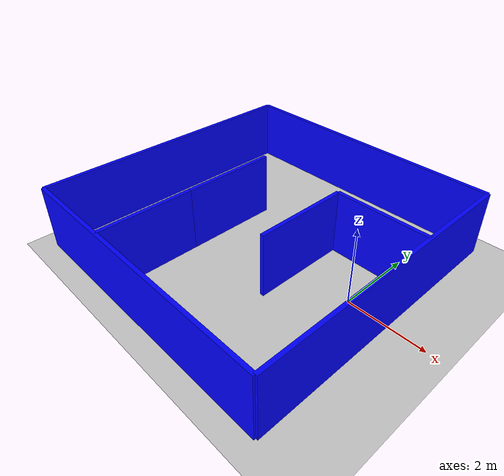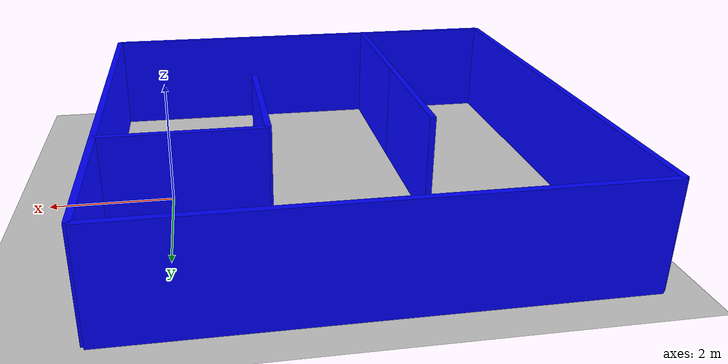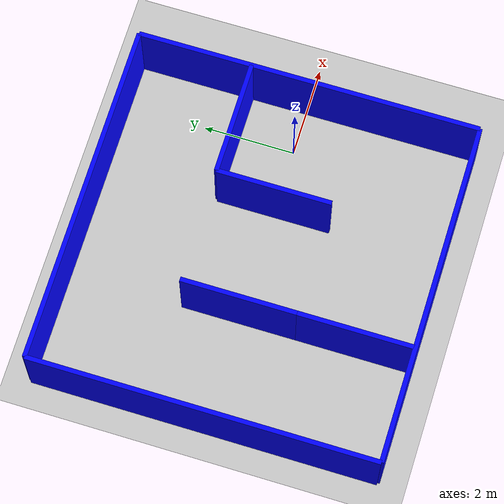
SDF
<sdf version="1.6">
  <world name="default">
    <physics type="ode">
      <max_step_size>0.001</max_step_size>
      <real_time_update_rate>100.0</real_time_update_rate>
      <real_time_factor>1.0</real_time_factor>
    </physics>

    <plugin
      filename="gz-sim-physics-system"
      name="ignition::gazebo::systems::Physics">
    </plugin>

    <plugin
      filename="gz-sim-user-commands-system"
      name="ignition::gazebo::systems::UserCommands">
    </plugin>
    <plugin
      filename="gz-sim-scene-broadcaster-system"
      name="ignition::gazebo::systems::SceneBroadcaster">
    </plugin>
    <plugin
      filename="gz-sim-contact-system"
      name="ignition::gazebo::systems::Contact">
    </plugin>

    <!-- IMU -->
    <plugin filename="gz-sim-imu-system"
        name="gz::sim::systems::Imu">
    </plugin>

    <!-- Lidar -->
    <plugin
      filename="gz-sim-sensors-system"
      name="gz::sim::systems::Sensors">
      <render_engine>ogre2</render_engine>
    </plugin>

    <light type="directional" name="sun">
      <cast_shadows>true</cast_shadows>
      <pose>0 0 10 0 0 0</pose>
      <diffuse>0.8 0.8 0.8 1</diffuse>
      <specular>0.2 0.2 0.2 1</specular>
      <attenuation>
        <range>1000</range>
        <constant>0.9</constant>
        <linear>0.01</linear>
        <quadratic>0.001</quadratic>
      </attenuation>
      <direction>-0.5 0.1 -0.9</direction>
    </light>

    <model name="ground_plane">
      <static>true</static>
      <link name="link">
        <collision name="collision">
          <geometry>
            <plane>
              <normal>0 0 1</normal>
              <size>100 100</size>
            </plane>
          </geometry>
        </collision>
        <visual name="visual">
          <geometry>
            <plane>
              <normal>0 0 1</normal>
              <size>100 100</size>
            </plane>
          </geometry>
          <material>
            <ambient>0.8 0.8 0.8 1</ambient>
            <diffuse>0.8 0.8 0.8 1</diffuse>
            <specular>0.8 0.8 0.8 1</specular>
          </material>
        </visual>
      </link>
    </model>
    <model name='wall_1'>
      <pose>1 0 0.85 0 0 1.5707963267948963</pose>
      <link name='wall_link'>
        <inertial>
          <inertia>
            <ixx>0.16666</ixx>
            <ixy>0</ixy>
            <ixz>0</ixz>
            <iyy>0.16666</iyy>
            <iyz>0</iyz>
            <izz>0.16666</izz>
          </inertia>
          <mass>1</mass>
          <pose>0 0 0 0 0 0</pose>
        </inertial>
        <collision name='box_collision'>
          <geometry>
            <box>
              <size>7.5 0.10000000000000001 1.7</size>
            </box>
          </geometry>
          <surface>
            <friction>
              <ode/>
            </friction>
            <bounce/>
            <contact/>
          </surface>
        </collision>
        <visual name='box_visual'>
          <geometry>
            <box>
              <size>7.5 0.10000000000000001 1.7</size>
            </box>
          </geometry>
          <material>
            <ambient>0 0 1 1</ambient>
            <diffuse>0 0 1 1</diffuse>
            <specular>1 1 1 1</specular>
          </material>
        </visual>
        <pose>0 0 0 0 0 0</pose>
        <enable_wind>false</enable_wind>
      </link>
      <static>false</static>
      <self_collide>false</self_collide>
    </model>
    <model name='wall_2'>
      <pose>-6.5 0 0.85 0 0 1.5707963267948963</pose>
      <link name='wall_link'>
        <inertial>
          <inertia>
            <ixx>0.16666</ixx>
            <ixy>0</ixy>
            <ixz>0</ixz>
            <iyy>0.16666</iyy>
            <iyz>0</iyz>
            <izz>0.16666</izz>
          </inertia>
          <mass>1</mass>
          <pose>0 0 0 0 0 0</pose>
        </inertial>
        <collision name='box_collision'>
          <geometry>
            <box>
              <size>7.5 0.10000000000000001 1.7</size>
            </box>
          </geometry>
          <surface>
            <friction>
              <ode/>
            </friction>
            <bounce/>
            <contact/>
          </surface>
        </collision>
        <visual name='box_visual'>
          <geometry>
            <box>
              <size>7.5 0.10000000000000001 1.7</size>
            </box>
          </geometry>
          <material>
            <ambient>0 0 1 1</ambient>
            <diffuse>0 0 1 1</diffuse>
            <specular>1 1 1 1</specular>
          </material>
        </visual>
        <pose>0 0 0 0 0 0</pose>
        <enable_wind>false</enable_wind>
      </link>
      <static>false</static>
      <self_collide>false</self_collide>
    </model>
    <model name='wall_3'>
      <pose>-2.75 3.75 0.85 0 0 0</pose>
      <link name='wall_link'>
        <inertial>
          <inertia>
            <ixx>0.16666</ixx>
            <ixy>0</ixy>
            <ixz>0</ixz>
            <iyy>0.16666</iyy>
            <iyz>0</iyz>
            <izz>0.16666</izz>
          </inertia>
          <mass>1</mass>
          <pose>0 0 0 0 0 0</pose>
        </inertial>
        <collision name='box_collision'>
          <geometry>
            <box>
              <size>7.5 0.10000000000000001 1.7</size>
            </box>
          </geometry>
          <surface>
            <friction>
              <ode/>
            </friction>
            <bounce/>
            <contact/>
          </surface>
        </collision>
        <visual name='box_visual'>
          <geometry>
            <box>
              <size>7.5 0.10000000000000001 1.7</size>
            </box>
          </geometry>
          <material>
            <ambient>0 0 1 1</ambient>
            <diffuse>0 0 1 1</diffuse>
            <specular>1 1 1 1</specular>
          </material>
        </visual>
        <pose>0 0 0 0 0 0</pose>
        <enable_wind>false</enable_wind>
      </link>
      <static>false</static>
      <self_collide>false</self_collide>
    </model>
    <model name='wall_4'>
      <pose>-2.75 -3.75 0.85 0 0 0</pose>
      <link name='wall_link'>
        <inertial>
          <inertia>
            <ixx>0.16666</ixx>
            <ixy>0</ixy>
            <ixz>0</ixz>
            <iyy>0.16666</iyy>
            <iyz>0</iyz>
            <izz>0.16666</izz>
          </inertia>
          <mass>1</mass>
          <pose>0 0 0 0 0 0</pose>
        </inertial>
        <collision name='box_collision'>
          <geometry>
            <box>
              <size>7.5 0.10000000000000001 1.7</size>
            </box>
          </geometry>
          <surface>
            <friction>
              <ode/>
            </friction>
            <bounce/>
            <contact/>
          </surface>
        </collision>
        <visual name='box_visual'>
          <geometry>
            <box>
              <size>7.5 0.10000000000000001 1.7</size>
            </box>
          </geometry>
          <material>
            <ambient>0 0 1 1</ambient>
            <diffuse>0 0 1 1</diffuse>
            <specular>1 1 1 1</specular>
          </material>
        </visual>
        <pose>0 0 0 0 0 0</pose>
        <enable_wind>false</enable_wind>
      </link>
      <static>false</static>
      <self_collide>false</self_collide>
    </model>
    <model name='wall_3_1'>
      <pose>-0.25 1.25 0.85 0 0 0</pose>
      <link name='wall_link'>
        <inertial>
          <inertia>
            <ixx>0.16666</ixx>
            <ixy>0</ixy>
            <ixz>0</ixz>
            <iyy>0.16666</iyy>
            <iyz>0</iyz>
            <izz>0.16666</izz>
          </inertia>
          <mass>1</mass>
          <pose>0 0 0 0 0 0</pose>
        </inertial>
        <collision name='box_collision'>
          <geometry>
            <box>
              <size>2.5 0.10000000000000001 1.7</size>
            </box>
          </geometry>
          <surface>
            <friction>
              <ode/>
            </friction>
            <bounce/>
            <contact/>
          </surface>
        </collision>
        <visual name='box_visual'>
          <geometry>
            <box>
              <size>2.5 0.10000000000000001 1.7</size>
            </box>
          </geometry>
          <material>
            <ambient>0 0 1 1</ambient>
            <diffuse>0 0 1 1</diffuse>
            <specular>1 1 1 1</specular>
          </material>
        </visual>
        <pose>0 0 0 0 0 0</pose>
        <enable_wind>false</enable_wind>
      </link>
      <static>false</static>
      <self_collide>false</self_collide>
    </model>
    <model name='wall_1_1'>
      <pose degrees="true">-1.5 0 0.85 0 0 90</pose>
      <link name='wall_link'>
        <inertial>
          <inertia>
            <ixx>0.16666</ixx>
            <ixy>0</ixy>
            <ixz>0</ixz>
            <iyy>0.16666</iyy>
            <iyz>0</iyz>
            <izz>0.16666</izz>
          </inertia>
          <mass>1</mass>
          <pose>0 0 0 0 0 0</pose>
        </inertial>
        <collision name='box_collision'>
          <geometry>
            <box>
              <size>2.5 0.10000000000000001 1.7</size>
            </box>
          </geometry>
          <surface>
            <friction>
              <ode/>
            </friction>
            <bounce/>
            <contact/>
          </surface>
        </collision>
        <visual name='box_visual'>
          <geometry>
            <box>
              <size>2.5 0.10000000000000001 1.7</size>
            </box>
          </geometry>
          <material>
            <ambient>0 0 1 1</ambient>
            <diffuse>0 0 1 1</diffuse>
            <specular>1 1 1 1</specular>
          </material>
        </visual>
        <pose>0 0 0 0 0 0</pose>
        <enable_wind>false</enable_wind>
      </link>
      <static>false</static>
      <self_collide>false</self_collide>
    </model>
    <model name='wall_1_2'>
      <pose degrees="true">-4 0 0.85 0 0 90</pose>
      <link name='wall_link'>
        <inertial>
          <inertia>
            <ixx>0.16666</ixx>
            <ixy>0</ixy>
            <ixz>0</ixz>
            <iyy>0.16666</iyy>
            <iyz>0</iyz>
            <izz>0.16666</izz>
          </inertia>
          <mass>1</mass>
          <pose>0 0 0 0 0 0</pose>
        </inertial>
        <collision name='box_collision'>
          <geometry>
            <box>
              <size>2.5 0.10000000000000001 1.7</size>
            </box>
          </geometry>
          <surface>
            <friction>
              <ode/>
            </friction>
            <bounce/>
            <contact/>
          </surface>
        </collision>
        <visual name='box_visual'>
          <geometry>
            <box>
              <size>2.5 0.10000000000000001 1.7</size>
            </box>
          </geometry>
          <material>
            <ambient>0 0 1 1</ambient>
            <diffuse>0 0 1 1</diffuse>
            <specular>1 1 1 1</specular>
          </material>
        </visual>
        <pose>0 0 0 0 0 0</pose>
        <enable_wind>false</enable_wind>
      </link>
      <static>false</static>
      <self_collide>false</self_collide>
    </model>
    <model name='wall_1_3'>
      <pose degrees="true">-4 -2.5 0.85 0 0 90</pose>
      <link name='wall_link'>
        <inertial>
          <inertia>
            <ixx>0.16666</ixx>
            <ixy>0</ixy>
            <ixz>0</ixz>
            <iyy>0.16666</iyy>
            <iyz>0</iyz>
            <izz>0.16666</izz>
          </inertia>
          <mass>1</mass>
          <pose>0 0 0 0 0 0</pose>
        </inertial>
        <collision name='box_collision'>
          <geometry>
            <box>
              <size>2.5 0.10000000000000001 1.7</size>
            </box>
          </geometry>
          <surface>
            <friction>
              <ode/>
            </friction>
            <bounce/>
            <contact/>
          </surface>
        </collision>
        <visual name='box_visual'>
          <geometry>
            <box>
              <size>2.5 0.10000000000000001 1.7</size>
            </box>
          </geometry>
          <material>
            <ambient>0 0 1 1</ambient>
            <diffuse>0 0 1 1</diffuse>
            <specular>1 1 1 1</specular>
          </material>
        </visual>
        <pose>0 0 0 0 0 0</pose>
        <enable_wind>false</enable_wind>
      </link>
      <static>false</static>
      <self_collide>false</self_collide>
    </model>

  </world>
</sdf>
